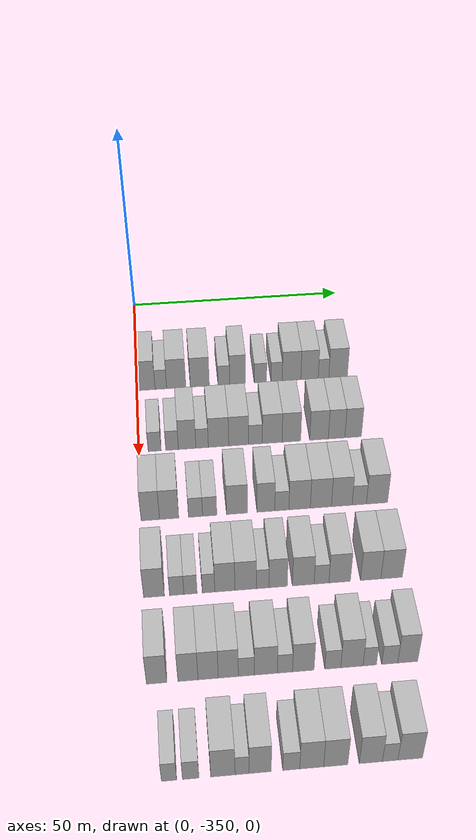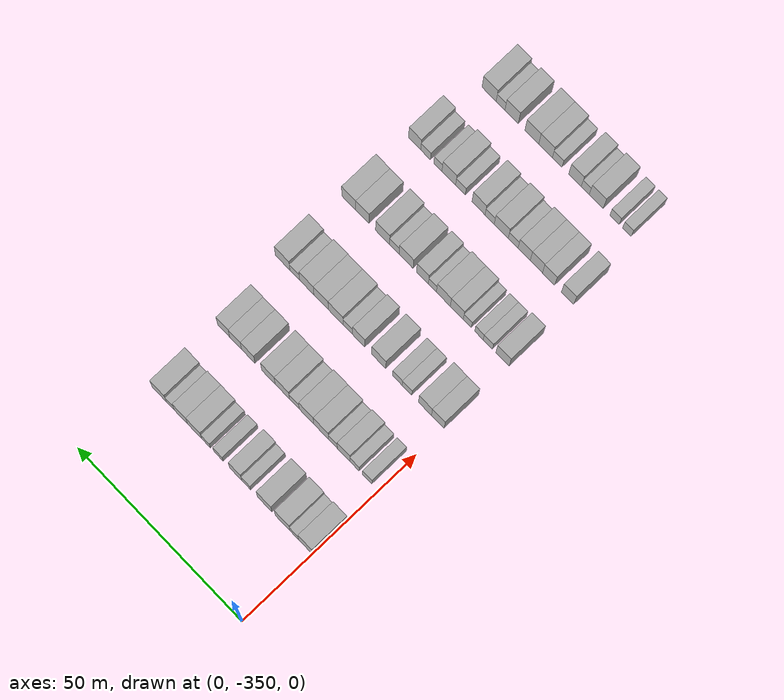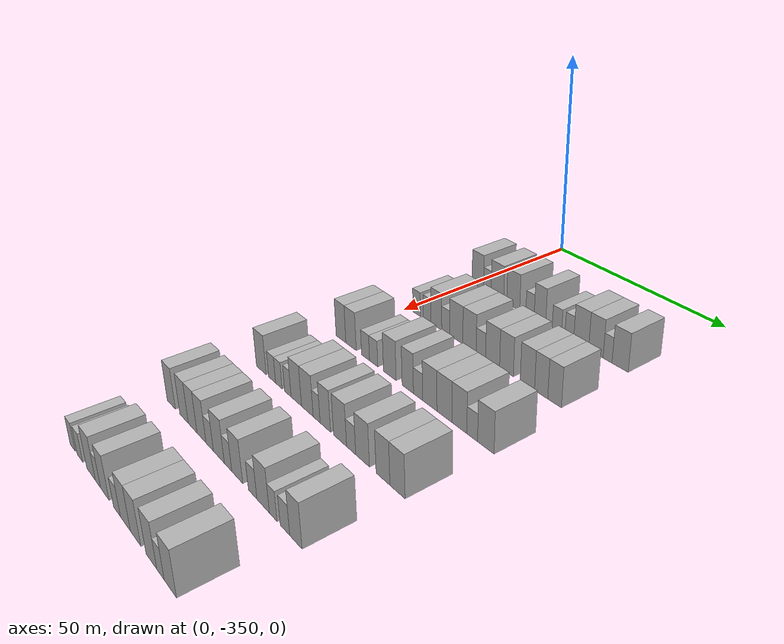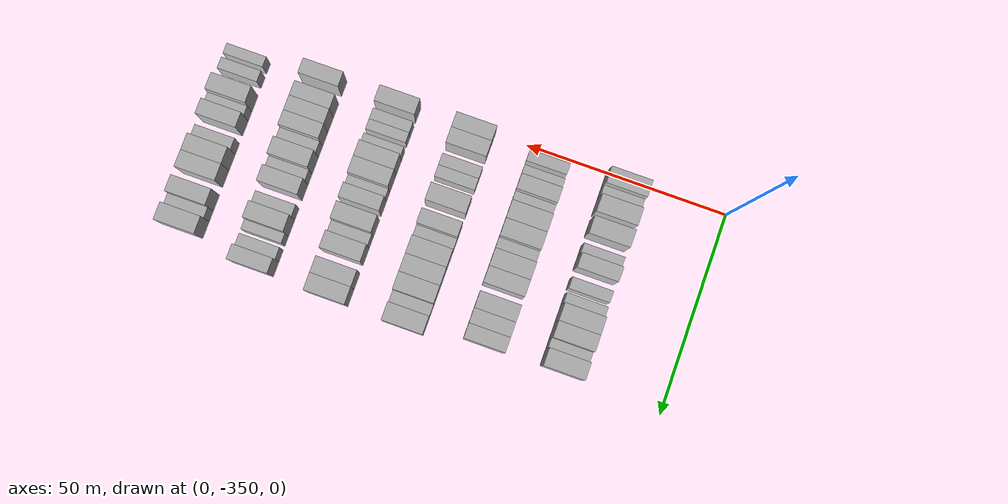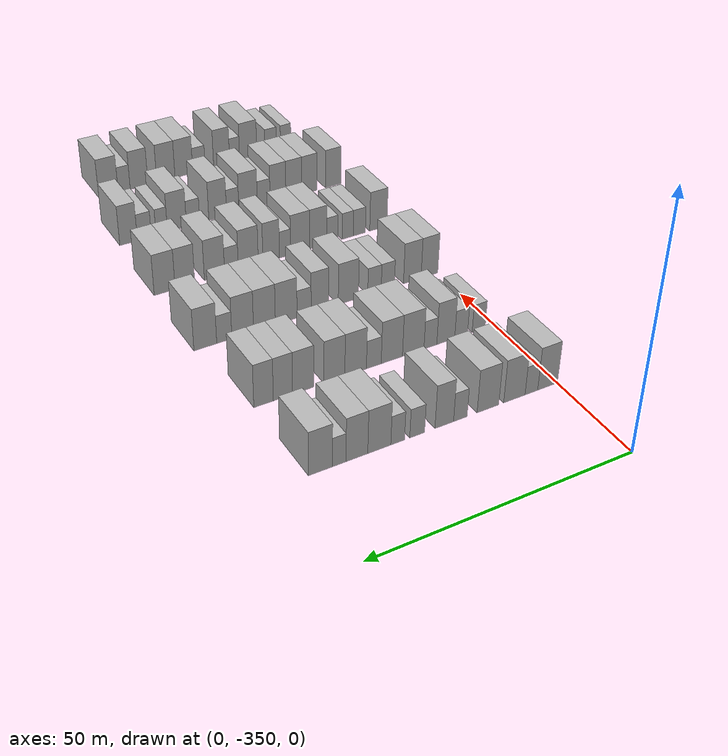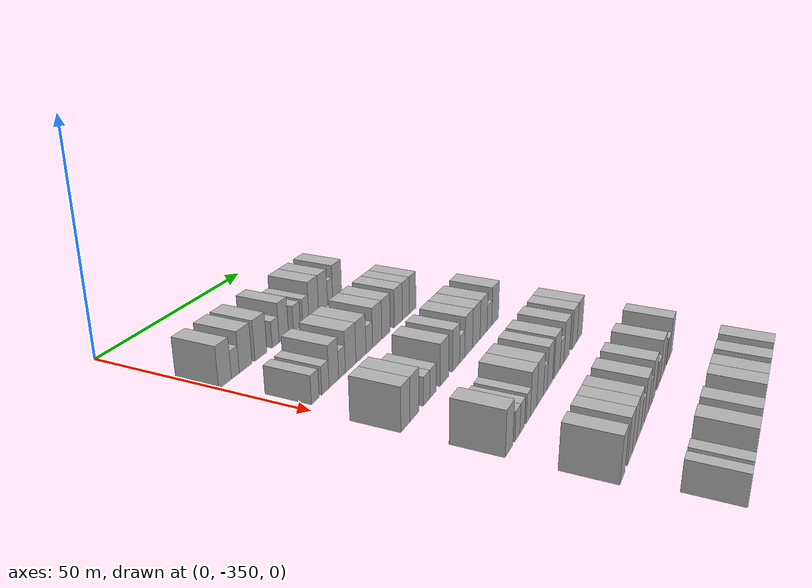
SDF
<sdf version="1.6">
 <world name="default">
  <model name="building_1">
   <static>1</static>
   <pose>25.0000 -347.9249 0 0.000000 0.000000 0.000000</pose>
   <link name="link">
    <pose>0 0 4.50 0 0 0</pose>
    <collision name="collision"><geometry><box><size>10.0000 4.1502 9.0000</size></box></geometry></collision>
    <visual name="visual">
     <cast_shadows>0</cast_shadows>
     <geometry><box><size>10.0000 4.1502 9.0000</size></box></geometry>
     <material>
      <script>
       <uri>model://HANNAS_wall/materials/scripts</uri>
       <uri>model://HANNAS_wall/materials/textures</uri>
       <name>vrc/HANNAS_wall</name>
      </script>
     </material>
    </visual>
   </link>
  </model>
  <model name="building_2">
   <static>1</static>
   <pose>25.0000 -344.5336 0 0.000000 0.000000 0.000000</pose>
   <link name="link">
    <pose>0 0 3.00 0 0 0</pose>
    <collision name="collision"><geometry><box><size>10.0000 2.6324 6.0000</size></box></geometry></collision>
    <visual name="visual">
     <cast_shadows>0</cast_shadows>
     <geometry><box><size>10.0000 2.6324 6.0000</size></box></geometry>
     <material>
      <script>
       <uri>model://HANNAS_wall/materials/scripts</uri>
       <uri>model://HANNAS_wall/materials/textures</uri>
       <name>vrc/HANNAS_wall</name>
      </script>
     </material>
    </visual>
   </link>
  </model>
  <model name="building_3">
   <static>1</static>
   <pose>25.0000 -341.0188 0 0.000000 0.000000 0.000000</pose>
   <link name="link">
    <pose>0 0 4.50 0 0 0</pose>
    <collision name="collision"><geometry><box><size>10.0000 4.3973 9.0000</size></box></geometry></collision>
    <visual name="visual">
     <cast_shadows>0</cast_shadows>
     <geometry><box><size>10.0000 4.3973 9.0000</size></box></geometry>
     <material>
      <script>
       <uri>model://HANNAS_wall/materials/scripts</uri>
       <uri>model://HANNAS_wall/materials/textures</uri>
       <name>vrc/HANNAS_wall</name>
      </script>
     </material>
    </visual>
   </link>
  </model>
  <model name="building_4">
   <static>1</static>
   <pose>25.0000 -335.6352 0 0.000000 0.000000 0.000000</pose>
   <link name="link">
    <pose>0 0 4.50 0 0 0</pose>
    <collision name="collision"><geometry><box><size>10.0000 4.3697 9.0000</size></box></geometry></collision>
    <visual name="visual">
     <cast_shadows>0</cast_shadows>
     <geometry><box><size>10.0000 4.3697 9.0000</size></box></geometry>
     <material>
      <script>
       <uri>model://HANNAS_wall/materials/scripts</uri>
       <uri>model://HANNAS_wall/materials/textures</uri>
       <name>vrc/HANNAS_wall</name>
      </script>
     </material>
    </visual>
   </link>
  </model>
  <model name="building_5">
   <static>1</static>
   <pose>25.0000 -330.1107 0 0.000000 0.000000 0.000000</pose>
   <link name="link">
    <pose>0 0 3.00 0 0 0</pose>
    <collision name="collision"><geometry><box><size>10.0000 2.6794 6.0000</size></box></geometry></collision>
    <visual name="visual">
     <cast_shadows>0</cast_shadows>
     <geometry><box><size>10.0000 2.6794 6.0000</size></box></geometry>
     <material>
      <script>
       <uri>model://HANNAS_wall/materials/scripts</uri>
       <uri>model://HANNAS_wall/materials/textures</uri>
       <name>vrc/HANNAS_wall</name>
      </script>
     </material>
    </visual>
   </link>
  </model>
  <model name="building_6">
   <static>1</static>
   <pose>25.0000 -326.9440 0 0.000000 0.000000 0.000000</pose>
   <link name="link">
    <pose>0 0 4.50 0 0 0</pose>
    <collision name="collision"><geometry><box><size>10.0000 3.6540 9.0000</size></box></geometry></collision>
    <visual name="visual">
     <cast_shadows>0</cast_shadows>
     <geometry><box><size>10.0000 3.6540 9.0000</size></box></geometry>
     <material>
      <script>
       <uri>model://HANNAS_wall/materials/scripts</uri>
       <uri>model://HANNAS_wall/materials/textures</uri>
       <name>vrc/HANNAS_wall</name>
      </script>
     </material>
    </visual>
   </link>
  </model>
  <model name="building_7">
   <static>1</static>
   <pose>25.0000 -321.6880 0 0.000000 0.000000 0.000000</pose>
   <link name="link">
    <pose>0 0 3.00 0 0 0</pose>
    <collision name="collision"><geometry><box><size>10.0000 2.8580 6.0000</size></box></geometry></collision>
    <visual name="visual">
     <cast_shadows>0</cast_shadows>
     <geometry><box><size>10.0000 2.8580 6.0000</size></box></geometry>
     <material>
      <script>
       <uri>model://HANNAS_wall/materials/scripts</uri>
       <uri>model://HANNAS_wall/materials/textures</uri>
       <name>vrc/HANNAS_wall</name>
      </script>
     </material>
    </visual>
   </link>
  </model>
  <model name="building_8">
   <static>1</static>
   <pose>25.0000 -317.9588 0 0.000000 0.000000 0.000000</pose>
   <link name="link">
    <pose>0 0 3.00 0 0 0</pose>
    <collision name="collision"><geometry><box><size>10.0000 2.6003 6.0000</size></box></geometry></collision>
    <visual name="visual">
     <cast_shadows>0</cast_shadows>
     <geometry><box><size>10.0000 2.6003 6.0000</size></box></geometry>
     <material>
      <script>
       <uri>model://HANNAS_wall/materials/scripts</uri>
       <uri>model://HANNAS_wall/materials/textures</uri>
       <name>vrc/HANNAS_wall</name>
      </script>
     </material>
    </visual>
   </link>
  </model>
  <model name="building_9">
   <static>1</static>
   <pose>25.0000 -314.4956 0 0.000000 0.000000 0.000000</pose>
   <link name="link">
    <pose>0 0 4.50 0 0 0</pose>
    <collision name="collision"><geometry><box><size>10.0000 4.3263 9.0000</size></box></geometry></collision>
    <visual name="visual">
     <cast_shadows>0</cast_shadows>
     <geometry><box><size>10.0000 4.3263 9.0000</size></box></geometry>
     <material>
      <script>
       <uri>model://HANNAS_wall/materials/scripts</uri>
       <uri>model://HANNAS_wall/materials/textures</uri>
       <name>vrc/HANNAS_wall</name>
      </script>
     </material>
    </visual>
   </link>
  </model>
  <model name="building_10">
   <static>1</static>
   <pose>25.0000 -310.3089 0 0.000000 0.000000 0.000000</pose>
   <link name="link">
    <pose>0 0 4.50 0 0 0</pose>
    <collision name="collision"><geometry><box><size>10.0000 4.0471 9.0000</size></box></geometry></collision>
    <visual name="visual">
     <cast_shadows>0</cast_shadows>
     <geometry><box><size>10.0000 4.0471 9.0000</size></box></geometry>
     <material>
      <script>
       <uri>model://HANNAS_wall/materials/scripts</uri>
       <uri>model://HANNAS_wall/materials/textures</uri>
       <name>vrc/HANNAS_wall</name>
      </script>
     </material>
    </visual>
   </link>
  </model>
  <model name="building_11">
   <static>1</static>
   <pose>25.0000 -307.0615 0 0.000000 0.000000 0.000000</pose>
   <link name="link">
    <pose>0 0 3.00 0 0 0</pose>
    <collision name="collision"><geometry><box><size>10.0000 2.4477 6.0000</size></box></geometry></collision>
    <visual name="visual">
     <cast_shadows>0</cast_shadows>
     <geometry><box><size>10.0000 2.4477 6.0000</size></box></geometry>
     <material>
      <script>
       <uri>model://HANNAS_wall/materials/scripts</uri>
       <uri>model://HANNAS_wall/materials/textures</uri>
       <name>vrc/HANNAS_wall</name>
      </script>
     </material>
    </visual>
   </link>
  </model>
  <model name="building_12">
   <static>1</static>
   <pose>25.0000 -303.6712 0 0.000000 0.000000 0.000000</pose>
   <link name="link">
    <pose>0 0 4.50 0 0 0</pose>
    <collision name="collision"><geometry><box><size>10.0000 4.3329 9.0000</size></box></geometry></collision>
    <visual name="visual">
     <cast_shadows>0</cast_shadows>
     <geometry><box><size>10.0000 4.3329 9.0000</size></box></geometry>
     <material>
      <script>
       <uri>model://HANNAS_wall/materials/scripts</uri>
       <uri>model://HANNAS_wall/materials/textures</uri>
       <name>vrc/HANNAS_wall</name>
      </script>
     </material>
    </visual>
   </link>
  </model>
  <model name="building_166">
   <static>1</static>
   <pose>44.0000 -346.5894 0 0.000000 0.000000 0.000000</pose>
   <link name="link">
    <pose>0 0 3.00 0 0 0</pose>
    <collision name="collision"><geometry><box><size>10.0000 2.8213 6.0000</size></box></geometry></collision>
    <visual name="visual">
     <cast_shadows>0</cast_shadows>
     <geometry><box><size>10.0000 2.8213 6.0000</size></box></geometry>
     <material>
      <script>
       <uri>model://HANNAS_wall/materials/scripts</uri>
       <uri>model://HANNAS_wall/materials/textures</uri>
       <name>vrc/HANNAS_wall</name>
      </script>
     </material>
    </visual>
   </link>
  </model>
  <model name="building_167">
   <static>1</static>
   <pose>44.0000 -342.8076 0 0.000000 0.000000 0.000000</pose>
   <link name="link">
    <pose>0 0 3.00 0 0 0</pose>
    <collision name="collision"><geometry><box><size>10.0000 2.7422 6.0000</size></box></geometry></collision>
    <visual name="visual">
     <cast_shadows>0</cast_shadows>
     <geometry><box><size>10.0000 2.7422 6.0000</size></box></geometry>
     <material>
      <script>
       <uri>model://HANNAS_wall/materials/scripts</uri>
       <uri>model://HANNAS_wall/materials/textures</uri>
       <name>vrc/HANNAS_wall</name>
      </script>
     </material>
    </visual>
   </link>
  </model>
  <model name="building_168">
   <static>1</static>
   <pose>44.0000 -339.5365 0 0.000000 0.000000 0.000000</pose>
   <link name="link">
    <pose>0 0 4.50 0 0 0</pose>
    <collision name="collision"><geometry><box><size>10.0000 3.7999 9.0000</size></box></geometry></collision>
    <visual name="visual">
     <cast_shadows>0</cast_shadows>
     <geometry><box><size>10.0000 3.7999 9.0000</size></box></geometry>
     <material>
      <script>
       <uri>model://HANNAS_wall/materials/scripts</uri>
       <uri>model://HANNAS_wall/materials/textures</uri>
       <name>vrc/HANNAS_wall</name>
      </script>
     </material>
    </visual>
   </link>
  </model>
  <model name="building_169">
   <static>1</static>
   <pose>44.0000 -336.2883 0 0.000000 0.000000 0.000000</pose>
   <link name="link">
    <pose>0 0 3.00 0 0 0</pose>
    <collision name="collision"><geometry><box><size>10.0000 2.6965 6.0000</size></box></geometry></collision>
    <visual name="visual">
     <cast_shadows>0</cast_shadows>
     <geometry><box><size>10.0000 2.6965 6.0000</size></box></geometry>
     <material>
      <script>
       <uri>model://HANNAS_wall/materials/scripts</uri>
       <uri>model://HANNAS_wall/materials/textures</uri>
       <name>vrc/HANNAS_wall</name>
      </script>
     </material>
    </visual>
   </link>
  </model>
  <model name="building_170">
   <static>1</static>
   <pose>44.0000 -332.7072 0 0.000000 0.000000 0.000000</pose>
   <link name="link">
    <pose>0 0 4.50 0 0 0</pose>
    <collision name="collision"><geometry><box><size>10.0000 4.4658 9.0000</size></box></geometry></collision>
    <visual name="visual">
     <cast_shadows>0</cast_shadows>
     <geometry><box><size>10.0000 4.4658 9.0000</size></box></geometry>
     <material>
      <script>
       <uri>model://HANNAS_wall/materials/scripts</uri>
       <uri>model://HANNAS_wall/materials/textures</uri>
       <name>vrc/HANNAS_wall</name>
      </script>
     </material>
    </visual>
   </link>
  </model>
  <model name="building_171">
   <static>1</static>
   <pose>44.0000 -328.2968 0 0.000000 0.000000 0.000000</pose>
   <link name="link">
    <pose>0 0 4.50 0 0 0</pose>
    <collision name="collision"><geometry><box><size>10.0000 4.3550 9.0000</size></box></geometry></collision>
    <visual name="visual">
     <cast_shadows>0</cast_shadows>
     <geometry><box><size>10.0000 4.3550 9.0000</size></box></geometry>
     <material>
      <script>
       <uri>model://HANNAS_wall/materials/scripts</uri>
       <uri>model://HANNAS_wall/materials/textures</uri>
       <name>vrc/HANNAS_wall</name>
      </script>
     </material>
    </visual>
   </link>
  </model>
  <model name="building_172">
   <static>1</static>
   <pose>44.0000 -324.6262 0 0.000000 0.000000 0.000000</pose>
   <link name="link">
    <pose>0 0 3.00 0 0 0</pose>
    <collision name="collision"><geometry><box><size>10.0000 2.9864 6.0000</size></box></geometry></collision>
    <visual name="visual">
     <cast_shadows>0</cast_shadows>
     <geometry><box><size>10.0000 2.9864 6.0000</size></box></geometry>
     <material>
      <script>
       <uri>model://HANNAS_wall/materials/scripts</uri>
       <uri>model://HANNAS_wall/materials/textures</uri>
       <name>vrc/HANNAS_wall</name>
      </script>
     </material>
    </visual>
   </link>
  </model>
  <model name="building_173">
   <static>1</static>
   <pose>44.0000 -320.9754 0 0.000000 0.000000 0.000000</pose>
   <link name="link">
    <pose>0 0 4.50 0 0 0</pose>
    <collision name="collision"><geometry><box><size>10.0000 4.3151 9.0000</size></box></geometry></collision>
    <visual name="visual">
     <cast_shadows>0</cast_shadows>
     <geometry><box><size>10.0000 4.3151 9.0000</size></box></geometry>
     <material>
      <script>
       <uri>model://HANNAS_wall/materials/scripts</uri>
       <uri>model://HANNAS_wall/materials/textures</uri>
       <name>vrc/HANNAS_wall</name>
      </script>
     </material>
    </visual>
   </link>
  </model>
  <model name="building_174">
   <static>1</static>
   <pose>44.0000 -316.7635 0 0.000000 0.000000 0.000000</pose>
   <link name="link">
    <pose>0 0 4.50 0 0 0</pose>
    <collision name="collision"><geometry><box><size>10.0000 4.1087 9.0000</size></box></geometry></collision>
    <visual name="visual">
     <cast_shadows>0</cast_shadows>
     <geometry><box><size>10.0000 4.1087 9.0000</size></box></geometry>
     <material>
      <script>
       <uri>model://HANNAS_wall/materials/scripts</uri>
       <uri>model://HANNAS_wall/materials/textures</uri>
       <name>vrc/HANNAS_wall</name>
      </script>
     </material>
    </visual>
   </link>
  </model>
  <model name="building_175">
   <static>1</static>
   <pose>44.0000 -310.6637 0 0.000000 0.000000 0.000000</pose>
   <link name="link">
    <pose>0 0 4.50 0 0 0</pose>
    <collision name="collision"><geometry><box><size>10.0000 4.0910 9.0000</size></box></geometry></collision>
    <visual name="visual">
     <cast_shadows>0</cast_shadows>
     <geometry><box><size>10.0000 4.0910 9.0000</size></box></geometry>
     <material>
      <script>
       <uri>model://HANNAS_wall/materials/scripts</uri>
       <uri>model://HANNAS_wall/materials/textures</uri>
       <name>vrc/HANNAS_wall</name>
      </script>
     </material>
    </visual>
   </link>
  </model>
  <model name="building_176">
   <static>1</static>
   <pose>44.0000 -306.7945 0 0.000000 0.000000 0.000000</pose>
   <link name="link">
    <pose>0 0 4.50 0 0 0</pose>
    <collision name="collision"><geometry><box><size>10.0000 3.6473 9.0000</size></box></geometry></collision>
    <visual name="visual">
     <cast_shadows>0</cast_shadows>
     <geometry><box><size>10.0000 3.6473 9.0000</size></box></geometry>
     <material>
      <script>
       <uri>model://HANNAS_wall/materials/scripts</uri>
       <uri>model://HANNAS_wall/materials/textures</uri>
       <name>vrc/HANNAS_wall</name>
      </script>
     </material>
    </visual>
   </link>
  </model>
  <model name="building_177">
   <static>1</static>
   <pose>44.0000 -303.1327 0 0.000000 0.000000 0.000000</pose>
   <link name="link">
    <pose>0 0 4.50 0 0 0</pose>
    <collision name="collision"><geometry><box><size>10.0000 3.6763 9.0000</size></box></geometry></collision>
    <visual name="visual">
     <cast_shadows>0</cast_shadows>
     <geometry><box><size>10.0000 3.6763 9.0000</size></box></geometry>
     <material>
      <script>
       <uri>model://HANNAS_wall/materials/scripts</uri>
       <uri>model://HANNAS_wall/materials/textures</uri>
       <name>vrc/HANNAS_wall</name>
      </script>
     </material>
    </visual>
   </link>
  </model>
  <model name="building_336">
   <static>1</static>
   <pose>63.0000 -348.1125 0 0.000000 0.000000 0.000000</pose>
   <link name="link">
    <pose>0 0 4.50 0 0 0</pose>
    <collision name="collision"><geometry><box><size>10.0000 3.7749 9.0000</size></box></geometry></collision>
    <visual name="visual">
     <cast_shadows>0</cast_shadows>
     <geometry><box><size>10.0000 3.7749 9.0000</size></box></geometry>
     <material>
      <script>
       <uri>model://HANNAS_wall/materials/scripts</uri>
       <uri>model://HANNAS_wall/materials/textures</uri>
       <name>vrc/HANNAS_wall</name>
      </script>
     </material>
    </visual>
   </link>
  </model>
  <model name="building_337">
   <static>1</static>
   <pose>63.0000 -344.2597 0 0.000000 0.000000 0.000000</pose>
   <link name="link">
    <pose>0 0 4.50 0 0 0</pose>
    <collision name="collision"><geometry><box><size>10.0000 3.9307 9.0000</size></box></geometry></collision>
    <visual name="visual">
     <cast_shadows>0</cast_shadows>
     <geometry><box><size>10.0000 3.9307 9.0000</size></box></geometry>
     <material>
      <script>
       <uri>model://HANNAS_wall/materials/scripts</uri>
       <uri>model://HANNAS_wall/materials/textures</uri>
       <name>vrc/HANNAS_wall</name>
      </script>
     </material>
    </visual>
   </link>
  </model>
  <model name="building_338">
   <static>1</static>
   <pose>63.0000 -338.8430 0 0.000000 0.000000 0.000000</pose>
   <link name="link">
    <pose>0 0 3.00 0 0 0</pose>
    <collision name="collision"><geometry><box><size>10.0000 2.9027 6.0000</size></box></geometry></collision>
    <visual name="visual">
     <cast_shadows>0</cast_shadows>
     <geometry><box><size>10.0000 2.9027 6.0000</size></box></geometry>
     <material>
      <script>
       <uri>model://HANNAS_wall/materials/scripts</uri>
       <uri>model://HANNAS_wall/materials/textures</uri>
       <name>vrc/HANNAS_wall</name>
      </script>
     </material>
    </visual>
   </link>
  </model>
  <model name="building_339">
   <static>1</static>
   <pose>63.0000 -335.9231 0 0.000000 0.000000 0.000000</pose>
   <link name="link">
    <pose>0 0 3.00 0 0 0</pose>
    <collision name="collision"><geometry><box><size>10.0000 2.9372 6.0000</size></box></geometry></collision>
    <visual name="visual">
     <cast_shadows>0</cast_shadows>
     <geometry><box><size>10.0000 2.9372 6.0000</size></box></geometry>
     <material>
      <script>
       <uri>model://HANNAS_wall/materials/scripts</uri>
       <uri>model://HANNAS_wall/materials/textures</uri>
       <name>vrc/HANNAS_wall</name>
      </script>
     </material>
    </visual>
   </link>
  </model>
  <model name="building_340">
   <static>1</static>
   <pose>63.0000 -330.2910 0 0.000000 0.000000 0.000000</pose>
   <link name="link">
    <pose>0 0 4.50 0 0 0</pose>
    <collision name="collision"><geometry><box><size>10.0000 4.3270 9.0000</size></box></geometry></collision>
    <visual name="visual">
     <cast_shadows>0</cast_shadows>
     <geometry><box><size>10.0000 4.3270 9.0000</size></box></geometry>
     <material>
      <script>
       <uri>model://HANNAS_wall/materials/scripts</uri>
       <uri>model://HANNAS_wall/materials/textures</uri>
       <name>vrc/HANNAS_wall</name>
      </script>
     </material>
    </visual>
   </link>
  </model>
  <model name="building_341">
   <static>1</static>
   <pose>63.0000 -324.2810 0 0.000000 0.000000 0.000000</pose>
   <link name="link">
    <pose>0 0 4.50 0 0 0</pose>
    <collision name="collision"><geometry><box><size>10.0000 3.6929 9.0000</size></box></geometry></collision>
    <visual name="visual">
     <cast_shadows>0</cast_shadows>
     <geometry><box><size>10.0000 3.6929 9.0000</size></box></geometry>
     <material>
      <script>
       <uri>model://HANNAS_wall/materials/scripts</uri>
       <uri>model://HANNAS_wall/materials/textures</uri>
       <name>vrc/HANNAS_wall</name>
      </script>
     </material>
    </visual>
   </link>
  </model>
  <model name="building_342">
   <static>1</static>
   <pose>63.0000 -320.9707 0 0.000000 0.000000 0.000000</pose>
   <link name="link">
    <pose>0 0 3.00 0 0 0</pose>
    <collision name="collision"><geometry><box><size>10.0000 2.9277 6.0000</size></box></geometry></collision>
    <visual name="visual">
     <cast_shadows>0</cast_shadows>
     <geometry><box><size>10.0000 2.9277 6.0000</size></box></geometry>
     <material>
      <script>
       <uri>model://HANNAS_wall/materials/scripts</uri>
       <uri>model://HANNAS_wall/materials/textures</uri>
       <name>vrc/HANNAS_wall</name>
      </script>
     </material>
    </visual>
   </link>
  </model>
  <model name="building_343">
   <static>1</static>
   <pose>63.0000 -317.2808 0 0.000000 0.000000 0.000000</pose>
   <link name="link">
    <pose>0 0 4.50 0 0 0</pose>
    <collision name="collision"><geometry><box><size>10.0000 4.4520 9.0000</size></box></geometry></collision>
    <visual name="visual">
     <cast_shadows>0</cast_shadows>
     <geometry><box><size>10.0000 4.4520 9.0000</size></box></geometry>
     <material>
      <script>
       <uri>model://HANNAS_wall/materials/scripts</uri>
       <uri>model://HANNAS_wall/materials/textures</uri>
       <name>vrc/HANNAS_wall</name>
      </script>
     </material>
    </visual>
   </link>
  </model>
  <model name="building_344">
   <static>1</static>
   <pose>63.0000 -312.8478 0 0.000000 0.000000 0.000000</pose>
   <link name="link">
    <pose>0 0 4.50 0 0 0</pose>
    <collision name="collision"><geometry><box><size>10.0000 4.4141 9.0000</size></box></geometry></collision>
    <visual name="visual">
     <cast_shadows>0</cast_shadows>
     <geometry><box><size>10.0000 4.4141 9.0000</size></box></geometry>
     <material>
      <script>
       <uri>model://HANNAS_wall/materials/scripts</uri>
       <uri>model://HANNAS_wall/materials/textures</uri>
       <name>vrc/HANNAS_wall</name>
      </script>
     </material>
    </visual>
   </link>
  </model>
  <model name="building_345">
   <static>1</static>
   <pose>63.0000 -308.4712 0 0.000000 0.000000 0.000000</pose>
   <link name="link">
    <pose>0 0 4.50 0 0 0</pose>
    <collision name="collision"><geometry><box><size>10.0000 4.3391 9.0000</size></box></geometry></collision>
    <visual name="visual">
     <cast_shadows>0</cast_shadows>
     <geometry><box><size>10.0000 4.3391 9.0000</size></box></geometry>
     <material>
      <script>
       <uri>model://HANNAS_wall/materials/scripts</uri>
       <uri>model://HANNAS_wall/materials/textures</uri>
       <name>vrc/HANNAS_wall</name>
      </script>
     </material>
    </visual>
   </link>
  </model>
  <model name="building_346">
   <static>1</static>
   <pose>63.0000 -304.8070 0 0.000000 0.000000 0.000000</pose>
   <link name="link">
    <pose>0 0 3.00 0 0 0</pose>
    <collision name="collision"><geometry><box><size>10.0000 2.9893 6.0000</size></box></geometry></collision>
    <visual name="visual">
     <cast_shadows>0</cast_shadows>
     <geometry><box><size>10.0000 2.9893 6.0000</size></box></geometry>
     <material>
      <script>
       <uri>model://HANNAS_wall/materials/scripts</uri>
       <uri>model://HANNAS_wall/materials/textures</uri>
       <name>vrc/HANNAS_wall</name>
      </script>
     </material>
    </visual>
   </link>
  </model>
  <model name="building_347">
   <static>1</static>
   <pose>63.0000 -301.0854 0 0.000000 0.000000 0.000000</pose>
   <link name="link">
    <pose>0 0 4.50 0 0 0</pose>
    <collision name="collision"><geometry><box><size>10.0000 4.4539 9.0000</size></box></geometry></collision>
    <visual name="visual">
     <cast_shadows>0</cast_shadows>
     <geometry><box><size>10.0000 4.4539 9.0000</size></box></geometry>
     <material>
      <script>
       <uri>model://HANNAS_wall/materials/scripts</uri>
       <uri>model://HANNAS_wall/materials/textures</uri>
       <name>vrc/HANNAS_wall</name>
      </script>
     </material>
    </visual>
   </link>
  </model>
  <model name="building_506">
   <static>1</static>
   <pose>82.0000 -347.9944 0 0.000000 0.000000 0.000000</pose>
   <link name="link">
    <pose>0 0 4.50 0 0 0</pose>
    <collision name="collision"><geometry><box><size>10.0000 4.0113 9.0000</size></box></geometry></collision>
    <visual name="visual">
     <cast_shadows>0</cast_shadows>
     <geometry><box><size>10.0000 4.0113 9.0000</size></box></geometry>
     <material>
      <script>
       <uri>model://HANNAS_wall/materials/scripts</uri>
       <uri>model://HANNAS_wall/materials/textures</uri>
       <name>vrc/HANNAS_wall</name>
      </script>
     </material>
    </visual>
   </link>
  </model>
  <model name="building_507">
   <static>1</static>
   <pose>82.0000 -343.5986 0 0.000000 0.000000 0.000000</pose>
   <link name="link">
    <pose>0 0 3.00 0 0 0</pose>
    <collision name="collision"><geometry><box><size>10.0000 2.7803 6.0000</size></box></geometry></collision>
    <visual name="visual">
     <cast_shadows>0</cast_shadows>
     <geometry><box><size>10.0000 2.7803 6.0000</size></box></geometry>
     <material>
      <script>
       <uri>model://HANNAS_wall/materials/scripts</uri>
       <uri>model://HANNAS_wall/materials/textures</uri>
       <name>vrc/HANNAS_wall</name>
      </script>
     </material>
    </visual>
   </link>
  </model>
  <model name="building_508">
   <static>1</static>
   <pose>82.0000 -340.9234 0 0.000000 0.000000 0.000000</pose>
   <link name="link">
    <pose>0 0 3.00 0 0 0</pose>
    <collision name="collision"><geometry><box><size>10.0000 2.5700 6.0000</size></box></geometry></collision>
    <visual name="visual">
     <cast_shadows>0</cast_shadows>
     <geometry><box><size>10.0000 2.5700 6.0000</size></box></geometry>
     <material>
      <script>
       <uri>model://HANNAS_wall/materials/scripts</uri>
       <uri>model://HANNAS_wall/materials/textures</uri>
       <name>vrc/HANNAS_wall</name>
      </script>
     </material>
    </visual>
   </link>
  </model>
  <model name="building_509">
   <static>1</static>
   <pose>82.0000 -337.4186 0 0.000000 0.000000 0.000000</pose>
   <link name="link">
    <pose>0 0 3.00 0 0 0</pose>
    <collision name="collision"><geometry><box><size>10.0000 2.4396 6.0000</size></box></geometry></collision>
    <visual name="visual">
     <cast_shadows>0</cast_shadows>
     <geometry><box><size>10.0000 2.4396 6.0000</size></box></geometry>
     <material>
      <script>
       <uri>model://HANNAS_wall/materials/scripts</uri>
       <uri>model://HANNAS_wall/materials/textures</uri>
       <name>vrc/HANNAS_wall</name>
      </script>
     </material>
    </visual>
   </link>
  </model>
  <model name="building_510">
   <static>1</static>
   <pose>82.0000 -334.2432 0 0.000000 0.000000 0.000000</pose>
   <link name="link">
    <pose>0 0 4.50 0 0 0</pose>
    <collision name="collision"><geometry><box><size>10.0000 3.9113 9.0000</size></box></geometry></collision>
    <visual name="visual">
     <cast_shadows>0</cast_shadows>
     <geometry><box><size>10.0000 3.9113 9.0000</size></box></geometry>
     <material>
      <script>
       <uri>model://HANNAS_wall/materials/scripts</uri>
       <uri>model://HANNAS_wall/materials/textures</uri>
       <name>vrc/HANNAS_wall</name>
      </script>
     </material>
    </visual>
   </link>
  </model>
  <model name="building_511">
   <static>1</static>
   <pose>82.0000 -330.1823 0 0.000000 0.000000 0.000000</pose>
   <link name="link">
    <pose>0 0 4.50 0 0 0</pose>
    <collision name="collision"><geometry><box><size>10.0000 4.2104 9.0000</size></box></geometry></collision>
    <visual name="visual">
     <cast_shadows>0</cast_shadows>
     <geometry><box><size>10.0000 4.2104 9.0000</size></box></geometry>
     <material>
      <script>
       <uri>model://HANNAS_wall/materials/scripts</uri>
       <uri>model://HANNAS_wall/materials/textures</uri>
       <name>vrc/HANNAS_wall</name>
      </script>
     </material>
    </visual>
   </link>
  </model>
  <model name="building_512">
   <static>1</static>
   <pose>82.0000 -326.8623 0 0.000000 0.000000 0.000000</pose>
   <link name="link">
    <pose>0 0 3.00 0 0 0</pose>
    <collision name="collision"><geometry><box><size>10.0000 2.4298 6.0000</size></box></geometry></collision>
    <visual name="visual">
     <cast_shadows>0</cast_shadows>
     <geometry><box><size>10.0000 2.4298 6.0000</size></box></geometry>
     <material>
      <script>
       <uri>model://HANNAS_wall/materials/scripts</uri>
       <uri>model://HANNAS_wall/materials/textures</uri>
       <name>vrc/HANNAS_wall</name>
      </script>
     </material>
    </visual>
   </link>
  </model>
  <model name="building_513">
   <static>1</static>
   <pose>82.0000 -323.8449 0 0.000000 0.000000 0.000000</pose>
   <link name="link">
    <pose>0 0 4.50 0 0 0</pose>
    <collision name="collision"><geometry><box><size>10.0000 3.6048 9.0000</size></box></geometry></collision>
    <visual name="visual">
     <cast_shadows>0</cast_shadows>
     <geometry><box><size>10.0000 3.6048 9.0000</size></box></geometry>
     <material>
      <script>
       <uri>model://HANNAS_wall/materials/scripts</uri>
       <uri>model://HANNAS_wall/materials/textures</uri>
       <name>vrc/HANNAS_wall</name>
      </script>
     </material>
    </visual>
   </link>
  </model>
  <model name="building_514">
   <static>1</static>
   <pose>82.0000 -318.9042 0 0.000000 0.000000 0.000000</pose>
   <link name="link">
    <pose>0 0 4.50 0 0 0</pose>
    <collision name="collision"><geometry><box><size>10.0000 4.2766 9.0000</size></box></geometry></collision>
    <visual name="visual">
     <cast_shadows>0</cast_shadows>
     <geometry><box><size>10.0000 4.2766 9.0000</size></box></geometry>
     <material>
      <script>
       <uri>model://HANNAS_wall/materials/scripts</uri>
       <uri>model://HANNAS_wall/materials/textures</uri>
       <name>vrc/HANNAS_wall</name>
      </script>
     </material>
    </visual>
   </link>
  </model>
  <model name="building_515">
   <static>1</static>
   <pose>82.0000 -315.3088 0 0.000000 0.000000 0.000000</pose>
   <link name="link">
    <pose>0 0 3.00 0 0 0</pose>
    <collision name="collision"><geometry><box><size>10.0000 2.9143 6.0000</size></box></geometry></collision>
    <visual name="visual">
     <cast_shadows>0</cast_shadows>
     <geometry><box><size>10.0000 2.9143 6.0000</size></box></geometry>
     <material>
      <script>
       <uri>model://HANNAS_wall/materials/scripts</uri>
       <uri>model://HANNAS_wall/materials/textures</uri>
       <name>vrc/HANNAS_wall</name>
      </script>
     </material>
    </visual>
   </link>
  </model>
  <model name="building_516">
   <static>1</static>
   <pose>82.0000 -311.7260 0 0.000000 0.000000 0.000000</pose>
   <link name="link">
    <pose>0 0 4.50 0 0 0</pose>
    <collision name="collision"><geometry><box><size>10.0000 4.2513 9.0000</size></box></geometry></collision>
    <visual name="visual">
     <cast_shadows>0</cast_shadows>
     <geometry><box><size>10.0000 4.2513 9.0000</size></box></geometry>
     <material>
      <script>
       <uri>model://HANNAS_wall/materials/scripts</uri>
       <uri>model://HANNAS_wall/materials/textures</uri>
       <name>vrc/HANNAS_wall</name>
      </script>
     </material>
    </visual>
   </link>
  </model>
  <model name="building_517">
   <static>1</static>
   <pose>82.0000 -305.5764 0 0.000000 0.000000 0.000000</pose>
   <link name="link">
    <pose>0 0 4.50 0 0 0</pose>
    <collision name="collision"><geometry><box><size>10.0000 4.0479 9.0000</size></box></geometry></collision>
    <visual name="visual">
     <cast_shadows>0</cast_shadows>
     <geometry><box><size>10.0000 4.0479 9.0000</size></box></geometry>
     <material>
      <script>
       <uri>model://HANNAS_wall/materials/scripts</uri>
       <uri>model://HANNAS_wall/materials/textures</uri>
       <name>vrc/HANNAS_wall</name>
      </script>
     </material>
    </visual>
   </link>
  </model>
  <model name="building_518">
   <static>1</static>
   <pose>82.0000 -301.4203 0 0.000000 0.000000 0.000000</pose>
   <link name="link">
    <pose>0 0 4.50 0 0 0</pose>
    <collision name="collision"><geometry><box><size>10.0000 4.2644 9.0000</size></box></geometry></collision>
    <visual name="visual">
     <cast_shadows>0</cast_shadows>
     <geometry><box><size>10.0000 4.2644 9.0000</size></box></geometry>
     <material>
      <script>
       <uri>model://HANNAS_wall/materials/scripts</uri>
       <uri>model://HANNAS_wall/materials/textures</uri>
       <name>vrc/HANNAS_wall</name>
      </script>
     </material>
    </visual>
   </link>
  </model>
  <model name="building_686">
   <static>1</static>
   <pose>101.0000 -348.1423 0 0.000000 0.000000 0.000000</pose>
   <link name="link">
    <pose>0 0 4.50 0 0 0</pose>
    <collision name="collision"><geometry><box><size>10.0000 3.7153 9.0000</size></box></geometry></collision>
    <visual name="visual">
     <cast_shadows>0</cast_shadows>
     <geometry><box><size>10.0000 3.7153 9.0000</size></box></geometry>
     <material>
      <script>
       <uri>model://HANNAS_wall/materials/scripts</uri>
       <uri>model://HANNAS_wall/materials/textures</uri>
       <name>vrc/HANNAS_wall</name>
      </script>
     </material>
    </visual>
   </link>
  </model>
  <model name="building_687">
   <static>1</static>
   <pose>101.0000 -342.4474 0 0.000000 0.000000 0.000000</pose>
   <link name="link">
    <pose>0 0 4.50 0 0 0</pose>
    <collision name="collision"><geometry><box><size>10.0000 3.6745 9.0000</size></box></geometry></collision>
    <visual name="visual">
     <cast_shadows>0</cast_shadows>
     <geometry><box><size>10.0000 3.6745 9.0000</size></box></geometry>
     <material>
      <script>
       <uri>model://HANNAS_wall/materials/scripts</uri>
       <uri>model://HANNAS_wall/materials/textures</uri>
       <name>vrc/HANNAS_wall</name>
      </script>
     </material>
    </visual>
   </link>
  </model>
  <model name="building_688">
   <static>1</static>
   <pose>101.0000 -338.7586 0 0.000000 0.000000 0.000000</pose>
   <link name="link">
    <pose>0 0 4.50 0 0 0</pose>
    <collision name="collision"><geometry><box><size>10.0000 3.7031 9.0000</size></box></geometry></collision>
    <visual name="visual">
     <cast_shadows>0</cast_shadows>
     <geometry><box><size>10.0000 3.7031 9.0000</size></box></geometry>
     <material>
      <script>
       <uri>model://HANNAS_wall/materials/scripts</uri>
       <uri>model://HANNAS_wall/materials/textures</uri>
       <name>vrc/HANNAS_wall</name>
      </script>
     </material>
    </visual>
   </link>
  </model>
  <model name="building_689">
   <static>1</static>
   <pose>101.0000 -335.0680 0 0.000000 0.000000 0.000000</pose>
   <link name="link">
    <pose>0 0 4.50 0 0 0</pose>
    <collision name="collision"><geometry><box><size>10.0000 3.6782 9.0000</size></box></geometry></collision>
    <visual name="visual">
     <cast_shadows>0</cast_shadows>
     <geometry><box><size>10.0000 3.6782 9.0000</size></box></geometry>
     <material>
      <script>
       <uri>model://HANNAS_wall/materials/scripts</uri>
       <uri>model://HANNAS_wall/materials/textures</uri>
       <name>vrc/HANNAS_wall</name>
      </script>
     </material>
    </visual>
   </link>
  </model>
  <model name="building_690">
   <static>1</static>
   <pose>101.0000 -331.7549 0 0.000000 0.000000 0.000000</pose>
   <link name="link">
    <pose>0 0 3.00 0 0 0</pose>
    <collision name="collision"><geometry><box><size>10.0000 2.9480 6.0000</size></box></geometry></collision>
    <visual name="visual">
     <cast_shadows>0</cast_shadows>
     <geometry><box><size>10.0000 2.9480 6.0000</size></box></geometry>
     <material>
      <script>
       <uri>model://HANNAS_wall/materials/scripts</uri>
       <uri>model://HANNAS_wall/materials/textures</uri>
       <name>vrc/HANNAS_wall</name>
      </script>
     </material>
    </visual>
   </link>
  </model>
  <model name="building_691">
   <static>1</static>
   <pose>101.0000 -328.1646 0 0.000000 0.000000 0.000000</pose>
   <link name="link">
    <pose>0 0 4.50 0 0 0</pose>
    <collision name="collision"><geometry><box><size>10.0000 4.2327 9.0000</size></box></geometry></collision>
    <visual name="visual">
     <cast_shadows>0</cast_shadows>
     <geometry><box><size>10.0000 4.2327 9.0000</size></box></geometry>
     <material>
      <script>
       <uri>model://HANNAS_wall/materials/scripts</uri>
       <uri>model://HANNAS_wall/materials/textures</uri>
       <name>vrc/HANNAS_wall</name>
      </script>
     </material>
    </visual>
   </link>
  </model>
  <model name="building_692">
   <static>1</static>
   <pose>101.0000 -324.6559 0 0.000000 0.000000 0.000000</pose>
   <link name="link">
    <pose>0 0 3.00 0 0 0</pose>
    <collision name="collision"><geometry><box><size>10.0000 2.7846 6.0000</size></box></geometry></collision>
    <visual name="visual">
     <cast_shadows>0</cast_shadows>
     <geometry><box><size>10.0000 2.7846 6.0000</size></box></geometry>
     <material>
      <script>
       <uri>model://HANNAS_wall/materials/scripts</uri>
       <uri>model://HANNAS_wall/materials/textures</uri>
       <name>vrc/HANNAS_wall</name>
      </script>
     </material>
    </visual>
   </link>
  </model>
  <model name="building_693">
   <static>1</static>
   <pose>101.0000 -321.2723 0 0.000000 0.000000 0.000000</pose>
   <link name="link">
    <pose>0 0 4.50 0 0 0</pose>
    <collision name="collision"><geometry><box><size>10.0000 3.9827 9.0000</size></box></geometry></collision>
    <visual name="visual">
     <cast_shadows>0</cast_shadows>
     <geometry><box><size>10.0000 3.9827 9.0000</size></box></geometry>
     <material>
      <script>
       <uri>model://HANNAS_wall/materials/scripts</uri>
       <uri>model://HANNAS_wall/materials/textures</uri>
       <name>vrc/HANNAS_wall</name>
      </script>
     </material>
    </visual>
   </link>
  </model>
  <model name="building_694">
   <static>1</static>
   <pose>101.0000 -315.8097 0 0.000000 0.000000 0.000000</pose>
   <link name="link">
    <pose>0 0 3.00 0 0 0</pose>
    <collision name="collision"><geometry><box><size>10.0000 2.9425 6.0000</size></box></geometry></collision>
    <visual name="visual">
     <cast_shadows>0</cast_shadows>
     <geometry><box><size>10.0000 2.9425 6.0000</size></box></geometry>
     <material>
      <script>
       <uri>model://HANNAS_wall/materials/scripts</uri>
       <uri>model://HANNAS_wall/materials/textures</uri>
       <name>vrc/HANNAS_wall</name>
      </script>
     </material>
    </visual>
   </link>
  </model>
  <model name="building_695">
   <static>1</static>
   <pose>101.0000 -312.2579 0 0.000000 0.000000 0.000000</pose>
   <link name="link">
    <pose>0 0 4.50 0 0 0</pose>
    <collision name="collision"><geometry><box><size>10.0000 4.1611 9.0000</size></box></geometry></collision>
    <visual name="visual">
     <cast_shadows>0</cast_shadows>
     <geometry><box><size>10.0000 4.1611 9.0000</size></box></geometry>
     <material>
      <script>
       <uri>model://HANNAS_wall/materials/scripts</uri>
       <uri>model://HANNAS_wall/materials/textures</uri>
       <name>vrc/HANNAS_wall</name>
      </script>
     </material>
    </visual>
   </link>
  </model>
  <model name="building_696">
   <static>1</static>
   <pose>101.0000 -308.9316 0 0.000000 0.000000 0.000000</pose>
   <link name="link">
    <pose>0 0 3.00 0 0 0</pose>
    <collision name="collision"><geometry><box><size>10.0000 2.4913 6.0000</size></box></geometry></collision>
    <visual name="visual">
     <cast_shadows>0</cast_shadows>
     <geometry><box><size>10.0000 2.4913 6.0000</size></box></geometry>
     <material>
      <script>
       <uri>model://HANNAS_wall/materials/scripts</uri>
       <uri>model://HANNAS_wall/materials/textures</uri>
       <name>vrc/HANNAS_wall</name>
      </script>
     </material>
    </visual>
   </link>
  </model>
  <model name="building_697">
   <static>1</static>
   <pose>101.0000 -305.1941 0 0.000000 0.000000 0.000000</pose>
   <link name="link">
    <pose>0 0 3.00 0 0 0</pose>
    <collision name="collision"><geometry><box><size>10.0000 2.9838 6.0000</size></box></geometry></collision>
    <visual name="visual">
     <cast_shadows>0</cast_shadows>
     <geometry><box><size>10.0000 2.9838 6.0000</size></box></geometry>
     <material>
      <script>
       <uri>model://HANNAS_wall/materials/scripts</uri>
       <uri>model://HANNAS_wall/materials/textures</uri>
       <name>vrc/HANNAS_wall</name>
      </script>
     </material>
    </visual>
   </link>
  </model>
  <model name="building_698">
   <static>1</static>
   <pose>101.0000 -301.8330 0 0.000000 0.000000 0.000000</pose>
   <link name="link">
    <pose>0 0 4.50 0 0 0</pose>
    <collision name="collision"><geometry><box><size>10.0000 3.7384 9.0000</size></box></geometry></collision>
    <visual name="visual">
     <cast_shadows>0</cast_shadows>
     <geometry><box><size>10.0000 3.7384 9.0000</size></box></geometry>
     <material>
      <script>
       <uri>model://HANNAS_wall/materials/scripts</uri>
       <uri>model://HANNAS_wall/materials/textures</uri>
       <name>vrc/HANNAS_wall</name>
      </script>
     </material>
    </visual>
   </link>
  </model>
  <model name="building_847">
   <static>1</static>
   <pose>120.0000 -346.7006 0 0.000000 0.000000 0.000000</pose>
   <link name="link">
    <pose>0 0 3.00 0 0 0</pose>
    <collision name="collision"><geometry><box><size>10.0000 2.5988 6.0000</size></box></geometry></collision>
    <visual name="visual">
     <cast_shadows>0</cast_shadows>
     <geometry><box><size>10.0000 2.5988 6.0000</size></box></geometry>
     <material>
      <script>
       <uri>model://HANNAS_wall/materials/scripts</uri>
       <uri>model://HANNAS_wall/materials/textures</uri>
       <name>vrc/HANNAS_wall</name>
      </script>
     </material>
    </visual>
   </link>
  </model>
  <model name="building_848">
   <static>1</static>
   <pose>120.0000 -342.9939 0 0.000000 0.000000 0.000000</pose>
   <link name="link">
    <pose>0 0 3.00 0 0 0</pose>
    <collision name="collision"><geometry><box><size>10.0000 2.8145 6.0000</size></box></geometry></collision>
    <visual name="visual">
     <cast_shadows>0</cast_shadows>
     <geometry><box><size>10.0000 2.8145 6.0000</size></box></geometry>
     <material>
      <script>
       <uri>model://HANNAS_wall/materials/scripts</uri>
       <uri>model://HANNAS_wall/materials/textures</uri>
       <name>vrc/HANNAS_wall</name>
      </script>
     </material>
    </visual>
   </link>
  </model>
  <model name="building_849">
   <static>1</static>
   <pose>120.0000 -337.4930 0 0.000000 0.000000 0.000000</pose>
   <link name="link">
    <pose>0 0 4.50 0 0 0</pose>
    <collision name="collision"><geometry><box><size>10.0000 4.1874 9.0000</size></box></geometry></collision>
    <visual name="visual">
     <cast_shadows>0</cast_shadows>
     <geometry><box><size>10.0000 4.1874 9.0000</size></box></geometry>
     <material>
      <script>
       <uri>model://HANNAS_wall/materials/scripts</uri>
       <uri>model://HANNAS_wall/materials/textures</uri>
       <name>vrc/HANNAS_wall</name>
      </script>
     </material>
    </visual>
   </link>
  </model>
  <model name="building_850">
   <static>1</static>
   <pose>120.0000 -334.1976 0 0.000000 0.000000 0.000000</pose>
   <link name="link">
    <pose>0 0 3.00 0 0 0</pose>
    <collision name="collision"><geometry><box><size>10.0000 2.4034 6.0000</size></box></geometry></collision>
    <visual name="visual">
     <cast_shadows>0</cast_shadows>
     <geometry><box><size>10.0000 2.4034 6.0000</size></box></geometry>
     <material>
      <script>
       <uri>model://HANNAS_wall/materials/scripts</uri>
       <uri>model://HANNAS_wall/materials/textures</uri>
       <name>vrc/HANNAS_wall</name>
      </script>
     </material>
    </visual>
   </link>
  </model>
  <model name="building_851">
   <static>1</static>
   <pose>120.0000 -331.0905 0 0.000000 0.000000 0.000000</pose>
   <link name="link">
    <pose>0 0 4.50 0 0 0</pose>
    <collision name="collision"><geometry><box><size>10.0000 3.8106 9.0000</size></box></geometry></collision>
    <visual name="visual">
     <cast_shadows>0</cast_shadows>
     <geometry><box><size>10.0000 3.8106 9.0000</size></box></geometry>
     <material>
      <script>
       <uri>model://HANNAS_wall/materials/scripts</uri>
       <uri>model://HANNAS_wall/materials/textures</uri>
       <name>vrc/HANNAS_wall</name>
      </script>
     </material>
    </visual>
   </link>
  </model>
  <model name="building_852">
   <static>1</static>
   <pose>120.0000 -325.7206 0 0.000000 0.000000 0.000000</pose>
   <link name="link">
    <pose>0 0 3.00 0 0 0</pose>
    <collision name="collision"><geometry><box><size>10.0000 2.9292 6.0000</size></box></geometry></collision>
    <visual name="visual">
     <cast_shadows>0</cast_shadows>
     <geometry><box><size>10.0000 2.9292 6.0000</size></box></geometry>
     <material>
      <script>
       <uri>model://HANNAS_wall/materials/scripts</uri>
       <uri>model://HANNAS_wall/materials/textures</uri>
       <name>vrc/HANNAS_wall</name>
      </script>
     </material>
    </visual>
   </link>
  </model>
  <model name="building_853">
   <static>1</static>
   <pose>120.0000 -322.1863 0 0.000000 0.000000 0.000000</pose>
   <link name="link">
    <pose>0 0 4.50 0 0 0</pose>
    <collision name="collision"><geometry><box><size>10.0000 4.1396 9.0000</size></box></geometry></collision>
    <visual name="visual">
     <cast_shadows>0</cast_shadows>
     <geometry><box><size>10.0000 4.1396 9.0000</size></box></geometry>
     <material>
      <script>
       <uri>model://HANNAS_wall/materials/scripts</uri>
       <uri>model://HANNAS_wall/materials/textures</uri>
       <name>vrc/HANNAS_wall</name>
      </script>
     </material>
    </visual>
   </link>
  </model>
  <model name="building_854">
   <static>1</static>
   <pose>120.0000 -318.0177 0 0.000000 0.000000 0.000000</pose>
   <link name="link">
    <pose>0 0 4.50 0 0 0</pose>
    <collision name="collision"><geometry><box><size>10.0000 4.1975 9.0000</size></box></geometry></collision>
    <visual name="visual">
     <cast_shadows>0</cast_shadows>
     <geometry><box><size>10.0000 4.1975 9.0000</size></box></geometry>
     <material>
      <script>
       <uri>model://HANNAS_wall/materials/scripts</uri>
       <uri>model://HANNAS_wall/materials/textures</uri>
       <name>vrc/HANNAS_wall</name>
      </script>
     </material>
    </visual>
   </link>
  </model>
  <model name="building_855">
   <static>1</static>
   <pose>120.0000 -311.8969 0 0.000000 0.000000 0.000000</pose>
   <link name="link">
    <pose>0 0 4.50 0 0 0</pose>
    <collision name="collision"><geometry><box><size>10.0000 4.0441 9.0000</size></box></geometry></collision>
    <visual name="visual">
     <cast_shadows>0</cast_shadows>
     <geometry><box><size>10.0000 4.0441 9.0000</size></box></geometry>
     <material>
      <script>
       <uri>model://HANNAS_wall/materials/scripts</uri>
       <uri>model://HANNAS_wall/materials/textures</uri>
       <name>vrc/HANNAS_wall</name>
      </script>
     </material>
    </visual>
   </link>
  </model>
  <model name="building_856">
   <static>1</static>
   <pose>120.0000 -308.5244 0 0.000000 0.000000 0.000000</pose>
   <link name="link">
    <pose>0 0 3.00 0 0 0</pose>
    <collision name="collision"><geometry><box><size>10.0000 2.7008 6.0000</size></box></geometry></collision>
    <visual name="visual">
     <cast_shadows>0</cast_shadows>
     <geometry><box><size>10.0000 2.7008 6.0000</size></box></geometry>
     <material>
      <script>
       <uri>model://HANNAS_wall/materials/scripts</uri>
       <uri>model://HANNAS_wall/materials/textures</uri>
       <name>vrc/HANNAS_wall</name>
      </script>
     </material>
    </visual>
   </link>
  </model>
  <model name="building_857">
   <static>1</static>
   <pose>120.0000 -305.0144 0 0.000000 0.000000 0.000000</pose>
   <link name="link">
    <pose>0 0 4.50 0 0 0</pose>
    <collision name="collision"><geometry><box><size>10.0000 4.3192 9.0000</size></box></geometry></collision>
    <visual name="visual">
     <cast_shadows>0</cast_shadows>
     <geometry><box><size>10.0000 4.3192 9.0000</size></box></geometry>
     <material>
      <script>
       <uri>model://HANNAS_wall/materials/scripts</uri>
       <uri>model://HANNAS_wall/materials/textures</uri>
       <name>vrc/HANNAS_wall</name>
      </script>
     </material>
    </visual>
   </link>
  </model>
 </world>
</sdf>
